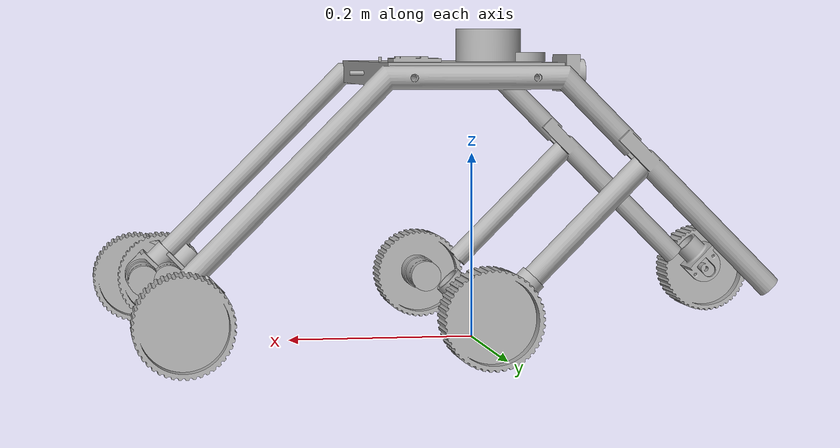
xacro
<?xml version="1.0" ?>
<robot name="agribot" xmlns:xacro="http://www.ros.org/wiki/xacro">

<xacro:include filename="$(find agribot_description)/urdf/materials.xacro" />
<xacro:include filename="$(find agribot_description)/urdf/agribot.ros2control" />
<xacro:include filename="$(find agribot_description)/urdf/agribot.gazebo" />
<link name="base_footprint" />
<link name="base_link">
  <inertial>
    <origin xyz="0.02376726050196793 -8.769362260032664e-06 -0.004748707157977561" rpy="0 0 0"/>
    <mass value="2.649489026530686"/>
    <inertia ixx="0.044199" iyy="0.025957" izz="0.057874" ixy="-0.0" iyz="-0.0" ixz="-0.001278"/>
  </inertial>
  <visual>
    <origin xyz="0 0 0" rpy="0 0 0"/>
    <geometry>
      <mesh filename="file://$(find agribot_description)/meshes/base_link.stl" scale="0.001 0.001 0.001"/>
    </geometry>
    <material name="silver"/>
  </visual>
  <collision>
    <origin xyz="0 0 0" rpy="0 0 0"/>
    <geometry>
      <mesh filename="file://$(find agribot_description)/meshes/base_link.stl" scale="0.001 0.001 0.001"/>
    </geometry>
  </collision>
</link>

<link name="motor_mount_1">
  <inertial>
    <origin xyz="0.002209810412204416 0.004569033461311572 -0.002209200882099166" rpy="0 0 0"/>
    <mass value="0.01743940222270842"/>
    <inertia ixx="6e-06" iyy="5e-06" izz="6e-06" ixy="-1e-06" iyz="1e-06" ixz="0.0"/>
  </inertial>
  <visual>
    <origin xyz="-0.333867 -0.17999 0.205668" rpy="0 0 0"/>
    <geometry>
      <mesh filename="file://$(find agribot_description)/meshes/motor_mount_1.stl" scale="0.001 0.001 0.001"/>
    </geometry>
    <material name="silver"/>
  </visual>
  <collision>
    <origin xyz="-0.333867 -0.17999 0.205668" rpy="0 0 0"/>
    <geometry>
      <mesh filename="file://$(find agribot_description)/meshes/motor_mount_1.stl" scale="0.001 0.001 0.001"/>
    </geometry>
  </collision>
</link>

<link name="motor_mount_2">
  <inertial>
    <origin xyz="0.002209182927432716 0.004569033461301525 -0.002209200882099166" rpy="0 0 0"/>
    <mass value="0.01743940222270842"/>
    <inertia ixx="6e-06" iyy="5e-06" izz="6e-06" ixy="-1e-06" iyz="1e-06" ixz="0.0"/>
  </inertial>
  <visual>
    <origin xyz="0.015838 -0.17999 0.205668" rpy="0 0 0"/>
    <geometry>
      <mesh filename="file://$(find agribot_description)/meshes/motor_mount_2.stl" scale="0.001 0.001 0.001"/>
    </geometry>
    <material name="silver"/>
  </visual>
  <collision>
    <origin xyz="0.015838 -0.17999 0.205668" rpy="0 0 0"/>
    <geometry>
      <mesh filename="file://$(find agribot_description)/meshes/motor_mount_2.stl" scale="0.001 0.001 0.001"/>
    </geometry>
  </collision>
</link>

<link name="motor_mount_3">
  <inertial>
    <origin xyz="-0.002209591366516328 0.004569033461293975 -0.0022092008966213272" rpy="0 0 0"/>
    <mass value="0.01743940222270842"/>
    <inertia ixx="6e-06" iyy="5e-06" izz="6e-06" ixy="1e-06" iyz="1e-06" ixz="-0.0"/>
  </inertial>
  <visual>
    <origin xyz="0.277468 -0.17999 0.205668" rpy="0 0 0"/>
    <geometry>
      <mesh filename="file://$(find agribot_description)/meshes/motor_mount_3.stl" scale="0.001 0.001 0.001"/>
    </geometry>
    <material name="silver"/>
  </visual>
  <collision>
    <origin xyz="0.277468 -0.17999 0.205668" rpy="0 0 0"/>
    <geometry>
      <mesh filename="file://$(find agribot_description)/meshes/motor_mount_3.stl" scale="0.001 0.001 0.001"/>
    </geometry>
  </collision>
</link>

<link name="motor_mount_4">
  <inertial>
    <origin xyz="0.0022098103976929684 -0.004568140525509218 -0.002209200896621133" rpy="0 0 0"/>
    <mass value="0.01743940222270842"/>
    <inertia ixx="6e-06" iyy="5e-06" izz="6e-06" ixy="1e-06" iyz="-1e-06" ixz="0.0"/>
  </inertial>
  <visual>
    <origin xyz="-0.333867 0.18001 0.205668" rpy="0 0 0"/>
    <geometry>
      <mesh filename="file://$(find agribot_description)/meshes/motor_mount_4.stl" scale="0.001 0.001 0.001"/>
    </geometry>
    <material name="silver"/>
  </visual>
  <collision>
    <origin xyz="-0.333867 0.18001 0.205668" rpy="0 0 0"/>
    <geometry>
      <mesh filename="file://$(find agribot_description)/meshes/motor_mount_4.stl" scale="0.001 0.001 0.001"/>
    </geometry>
  </collision>
</link>

<link name="motor_mount_5">
  <inertial>
    <origin xyz="0.0022091829129214403 -0.004568140525519515 -0.002209200896621133" rpy="0 0 0"/>
    <mass value="0.01743940222270842"/>
    <inertia ixx="6e-06" iyy="5e-06" izz="6e-06" ixy="1e-06" iyz="-1e-06" ixz="0.0"/>
  </inertial>
  <visual>
    <origin xyz="0.015838 0.18001 0.205668" rpy="0 0 0"/>
    <geometry>
      <mesh filename="file://$(find agribot_description)/meshes/motor_mount_5.stl" scale="0.001 0.001 0.001"/>
    </geometry>
    <material name="silver"/>
  </visual>
  <collision>
    <origin xyz="0.015838 0.18001 0.205668" rpy="0 0 0"/>
    <geometry>
      <mesh filename="file://$(find agribot_description)/meshes/motor_mount_5.stl" scale="0.001 0.001 0.001"/>
    </geometry>
  </collision>
</link>

<link name="motor_mount_6">
  <inertial>
    <origin xyz="-0.0022095913810276646 -0.0045681405255274254 -0.0022092008820992493" rpy="0 0 0"/>
    <mass value="0.01743940222270842"/>
    <inertia ixx="6e-06" iyy="5e-06" izz="6e-06" ixy="-1e-06" iyz="-1e-06" ixz="-0.0"/>
  </inertial>
  <visual>
    <origin xyz="0.277468 0.18001 0.205668" rpy="0 0 0"/>
    <geometry>
      <mesh filename="file://$(find agribot_description)/meshes/motor_mount_6.stl" scale="0.001 0.001 0.001"/>
    </geometry>
    <material name="silver"/>
  </visual>
  <collision>
    <origin xyz="0.277468 0.18001 0.205668" rpy="0 0 0"/>
    <geometry>
      <mesh filename="file://$(find agribot_description)/meshes/motor_mount_6.stl" scale="0.001 0.001 0.001"/>
    </geometry>
  </collision>
</link>

<link name="motor_1">
  <inertial>
    <origin xyz="0.011036658683897693 -0.03290017289606087 0.010882072426481482" rpy="0 0 0"/>
    <mass value="0.4814783214697331"/>
    <inertia ixx="0.000239" iyy="7.4e-05" izz="0.000239" ixy="-1e-06" iyz="1e-06" ixz="0.0"/>
  </inertial>
  <visual>
    <origin xyz="-0.338512 -0.199225 0.232233" rpy="0 0 0"/>
    <geometry>
      <mesh filename="file://$(find agribot_description)/meshes/motor_1.stl" scale="0.001 0.001 0.001"/>
    </geometry>
    <material name="silver"/>
  </visual>
  <collision>
    <origin xyz="-0.338512 -0.199225 0.232233" rpy="0 0 0"/>
    <geometry>
      <mesh filename="file://$(find agribot_description)/meshes/motor_1.stl" scale="0.001 0.001 0.001"/>
    </geometry>
  </collision>
</link>

<link name="motor_2">
  <inertial>
    <origin xyz="0.011036031199125086 -0.032900172896071556 0.010882072426481482" rpy="0 0 0"/>
    <mass value="0.4814783214697331"/>
    <inertia ixx="0.000239" iyy="7.4e-05" izz="0.000239" ixy="-1e-06" iyz="1e-06" ixz="0.0"/>
  </inertial>
  <visual>
    <origin xyz="0.011193 -0.199225 0.232233" rpy="0 0 0"/>
    <geometry>
      <mesh filename="file://$(find agribot_description)/meshes/motor_2.stl" scale="0.001 0.001 0.001"/>
    </geometry>
    <material name="silver"/>
  </visual>
  <collision>
    <origin xyz="0.011193 -0.199225 0.232233" rpy="0 0 0"/>
    <geometry>
      <mesh filename="file://$(find agribot_description)/meshes/motor_2.stl" scale="0.001 0.001 0.001"/>
    </geometry>
  </collision>
</link>

<link name="motor_3">
  <inertial>
    <origin xyz="0.010881681942064958 -0.032900172896079855 -0.011036049168313078" rpy="0 0 0"/>
    <mass value="0.4814783214697331"/>
    <inertia ixx="0.000239" iyy="7.4e-05" izz="0.000239" ixy="1e-06" iyz="1e-06" ixz="-0.0"/>
  </inertial>
  <visual>
    <origin xyz="0.304033 -0.199225 0.210313" rpy="0 0 0"/>
    <geometry>
      <mesh filename="file://$(find agribot_description)/meshes/motor_3.stl" scale="0.001 0.001 0.001"/>
    </geometry>
    <material name="silver"/>
  </visual>
  <collision>
    <origin xyz="0.304033 -0.199225 0.210313" rpy="0 0 0"/>
    <geometry>
      <mesh filename="file://$(find agribot_description)/meshes/motor_3.stl" scale="0.001 0.001 0.001"/>
    </geometry>
  </collision>
</link>

<link name="motor_4">
  <inertial>
    <origin xyz="-0.011036439652719165 0.032900065831845654 0.010882072426481482" rpy="0 0 0"/>
    <mass value="0.4814783214697331"/>
    <inertia ixx="0.000239" iyy="7.4e-05" izz="0.000239" ixy="-1e-06" iyz="-1e-06" ixz="-0.0"/>
  </inertial>
  <visual>
    <origin xyz="0.282113 0.199244 0.232233" rpy="0 0 0"/>
    <geometry>
      <mesh filename="file://$(find agribot_description)/meshes/motor_4.stl" scale="0.001 0.001 0.001"/>
    </geometry>
    <material name="silver"/>
  </visual>
  <collision>
    <origin xyz="0.282113 0.199244 0.232233" rpy="0 0 0"/>
    <geometry>
      <mesh filename="file://$(find agribot_description)/meshes/motor_4.stl" scale="0.001 0.001 0.001"/>
    </geometry>
  </collision>
</link>

<link name="motor_5">
  <inertial>
    <origin xyz="-0.010882090395659785 0.03290006583185412 -0.011036049168312329" rpy="0 0 0"/>
    <mass value="0.4814783214697331"/>
    <inertia ixx="0.000239" iyy="7.4e-05" izz="0.000239" ixy="1e-06" iyz="-1e-06" ixz="0.0"/>
  </inertial>
  <visual>
    <origin xyz="-0.010727 0.199244 0.210313" rpy="0 0 0"/>
    <geometry>
      <mesh filename="file://$(find agribot_description)/meshes/motor_5.stl" scale="0.001 0.001 0.001"/>
    </geometry>
    <material name="silver"/>
  </visual>
  <collision>
    <origin xyz="-0.010727 0.199244 0.210313" rpy="0 0 0"/>
    <geometry>
      <mesh filename="file://$(find agribot_description)/meshes/motor_5.stl" scale="0.001 0.001 0.001"/>
    </geometry>
  </collision>
</link>

<link name="motor_6">
  <inertial>
    <origin xyz="-0.010881462910887985 0.032900065831863695 -0.011036049168313605" rpy="0 0 0"/>
    <mass value="0.4814783214697331"/>
    <inertia ixx="0.000239" iyy="7.4e-05" izz="0.000239" ixy="1e-06" iyz="-1e-06" ixz="0.0"/>
  </inertial>
  <visual>
    <origin xyz="-0.360432 0.199244 0.210313" rpy="0 0 0"/>
    <geometry>
      <mesh filename="file://$(find agribot_description)/meshes/motor_6.stl" scale="0.001 0.001 0.001"/>
    </geometry>
    <material name="silver"/>
  </visual>
  <collision>
    <origin xyz="-0.360432 0.199244 0.210313" rpy="0 0 0"/>
    <geometry>
      <mesh filename="file://$(find agribot_description)/meshes/motor_6.stl" scale="0.001 0.001 0.001"/>
    </geometry>
  </collision>
</link>

<link name="right_rear_link_1">
  <inertial>
    <origin xyz="-2.895443201866854e-08 -0.012371746001831024 -2.6967430338808995e-07" rpy="0 0 0"/>
    <mass value="0.22366924861365764"/>
    <inertia ixx="0.000183" iyy="0.000329" izz="0.000183" ixy="0.0" iyz="-0.0" ixz="0.0"/>
  </inertial>
  <visual>
    <origin xyz="0.297257 0.219744 0.226988" rpy="0 0 0"/>
    <geometry>
      <mesh filename="file://$(find agribot_description)/meshes/right_rear_link_1.stl" scale="0.001 0.001 0.001"/>
    </geometry>
    <material name="silver"/>
  </visual>
  <collision>
    <origin xyz="0.297257 0.219744 0.226988" rpy="0 0 0"/>
    <geometry>
      <mesh filename="file://$(find agribot_description)/meshes/right_rear_link_1.stl" scale="0.001 0.001 0.001"/>
    </geometry>
  </collision>
</link>

<link name="right_mid_link_1">
  <inertial>
    <origin xyz="4.3610298984444323e-07 -0.01237174600182217 -4.540721615930998e-07" rpy="0 0 0"/>
    <mass value="0.22366924861365764"/>
    <inertia ixx="0.000183" iyy="0.000329" izz="0.000183" ixy="0.0" iyz="-0.0" ixz="0.0"/>
  </inertial>
  <visual>
    <origin xyz="-0.004716 0.219744 0.226222" rpy="0 0 0"/>
    <geometry>
      <mesh filename="file://$(find agribot_description)/meshes/right_mid_link_1.stl" scale="0.001 0.001 0.001"/>
    </geometry>
    <material name="silver"/>
  </visual>
  <collision>
    <origin xyz="-0.004716 0.219744 0.226222" rpy="0 0 0"/>
    <geometry>
      <mesh filename="file://$(find agribot_description)/meshes/right_mid_link_1.stl" scale="0.001 0.001 0.001"/>
    </geometry>
  </collision>
</link>

<link name="right_front_link_1">
  <inertial>
    <origin xyz="6.358776188930548e-08 -0.012371746001812955 -4.540721606216547e-07" rpy="0 0 0"/>
    <mass value="0.22366924861365764"/>
    <inertia ixx="0.000183" iyy="0.000329" izz="0.000183" ixy="0.0" iyz="-0.0" ixz="0.0"/>
  </inertial>
  <visual>
    <origin xyz="-0.354422 0.219744 0.226222" rpy="0 0 0"/>
    <geometry>
      <mesh filename="file://$(find agribot_description)/meshes/right_front_link_1.stl" scale="0.001 0.001 0.001"/>
    </geometry>
    <material name="silver"/>
  </visual>
  <collision>
    <origin xyz="-0.354422 0.219744 0.226222" rpy="0 0 0"/>
    <geometry>
      <mesh filename="file://$(find agribot_description)/meshes/right_front_link_1.stl" scale="0.001 0.001 0.001"/>
    </geometry>
  </collision>
</link>

<link name="left_front_link_1">
  <inertial>
    <origin xyz="6.358774801151768e-08 0.012371638937615781 -4.5407217499904284e-07" rpy="0 0 0"/>
    <mass value="0.22366924861365764"/>
    <inertia ixx="0.000183" iyy="0.000329" izz="0.000183" ixy="-0.0" iyz="-0.0" ixz="-0.0"/>
  </inertial>
  <visual>
    <origin xyz="-0.354422 -0.219725 0.226222" rpy="0 0 0"/>
    <geometry>
      <mesh filename="file://$(find agribot_description)/meshes/left_front_link_1.stl" scale="0.001 0.001 0.001"/>
    </geometry>
    <material name="silver"/>
  </visual>
  <collision>
    <origin xyz="-0.354422 -0.219725 0.226222" rpy="0 0 0"/>
    <geometry>
      <mesh filename="file://$(find agribot_description)/meshes/left_front_link_1.stl" scale="0.001 0.001 0.001"/>
    </geometry>
  </collision>
</link>

<link name="left_mid_link_1">
  <inertial>
    <origin xyz="4.3610298313366547e-07 0.007371638937605202 -4.5407217955095724e-07" rpy="0 0 0"/>
    <mass value="0.22366924861365764"/>
    <inertia ixx="0.000183" iyy="0.000329" izz="0.000183" ixy="-0.0" iyz="-0.0" ixz="-0.0"/>
  </inertial>
  <visual>
    <origin xyz="-0.004716 -0.219725 0.226222" rpy="0 0 0"/>
    <geometry>
      <mesh filename="file://$(find agribot_description)/meshes/left_mid_link_1.stl" scale="0.001 0.001 0.001"/>
    </geometry>
    <material name="silver"/>
  </visual>
  <collision>
    <origin xyz="-0.004716 -0.219725 0.226222" rpy="0 0 0"/>
    <geometry>
      <mesh filename="file://$(find agribot_description)/meshes/left_mid_link_1.stl" scale="0.001 0.001 0.001"/>
    </geometry>
  </collision>
</link>

<link name="left_rear_link_1">
  <inertial>
    <origin xyz="1.5544341214202007e-07 0.01237163893759688 -4.5407217599824357e-07" rpy="0 0 0"/>
    <mass value="0.22366924861365764"/>
    <inertia ixx="0.000183" iyy="0.000329" izz="0.000183" ixy="-0.0" iyz="-0.0" ixz="-0.0"/>
  </inertial>
  <visual>
    <origin xyz="0.298023 -0.219725 0.226222" rpy="0 0 0"/>
    <geometry>
      <mesh filename="file://$(find agribot_description)/meshes/left_rear_link_1.stl" scale="0.001 0.001 0.001"/>
    </geometry>
    <material name="silver"/>
  </visual>
  <collision>
    <origin xyz="0.298023 -0.219725 0.226222" rpy="0 0 0"/>
    <geometry>
      <mesh filename="file://$(find agribot_description)/meshes/left_rear_link_1.stl" scale="0.001 0.001 0.001"/>
    </geometry>
  </collision>
</link>

<link name="imu_link_1">
  <inertial>
    <origin xyz="0.0001505183280713085 0.0009028305958420219 -0.0007671413731985752" rpy="0 0 0"/>
    <mass value="0.06787415121849628"/>
    <inertia ixx="9e-06" iyy="1.4e-05" izz="2.2e-05" ixy="-0.0" iyz="0.0" ixz="-0.0"/>
  </inertial>
  <visual>
    <origin xyz="-0.0782 -0.09499 -0.028" rpy="0 0 0"/>
    <geometry>
      <mesh filename="file://$(find agribot_description)/meshes/imu_link_1.stl" scale="0.001 0.001 0.001"/>
    </geometry>
    <material name="silver"/>
  </visual>
  <collision>
    <origin xyz="-0.0782 -0.09499 -0.028" rpy="0 0 0"/>
    <geometry>
      <mesh filename="file://$(find agribot_description)/meshes/imu_link_1.stl" scale="0.001 0.001 0.001"/>
    </geometry>
  </collision>
</link>

<link name="lidar_link_1">
  <inertial>
    <origin xyz="-0.05105723521362256 4.464678925921589e-07 0.011388122125470204" rpy="0 0 0"/>
    <mass value="0.24203789804385267"/>
    <inertia ixx="9.8e-05" iyy="0.000133" izz="0.00018" ixy="-0.0" iyz="0.0" ixz="1.1e-05"/>
  </inertial>
  <visual>
    <origin xyz="-0.0982 0.01501 -0.03" rpy="0 0 0"/>
    <geometry>
      <mesh filename="file://$(find agribot_description)/meshes/lidar_link_1.stl" scale="0.001 0.001 0.001"/>
    </geometry>
    <material name="silver"/>
  </visual>
  <collision>
    <origin xyz="-0.0982 0.01501 -0.03" rpy="0 0 0"/>
    <geometry>
      <mesh filename="file://$(find agribot_description)/meshes/lidar_link_1.stl" scale="0.001 0.001 0.001"/>
    </geometry>
  </collision>
</link>

<link name="camera_link_1">
  <inertial>
    <origin xyz="0.0013710521364758976 0.0004246940467724747 -2.568385903262138e-10" rpy="0 0 0"/>
    <mass value="0.3825680956213953"/>
    <inertia ixx="0.000186" iyy="6.2e-05" izz="0.000153" ixy="-2e-06" iyz="-0.0" ixz="-0.0"/>
  </inertial>
  <visual>
    <origin xyz="-0.1332 1e-05 -0.0125" rpy="0 0 0"/>
    <geometry>
      <mesh filename="file://$(find agribot_description)/meshes/camera_link_1.stl" scale="0.001 0.001 0.001"/>
    </geometry>
    <material name="silver"/>
  </visual>
  <collision>
    <origin xyz="-0.1332 1e-05 -0.0125" rpy="0 0 0"/>
    <geometry>
      <mesh filename="file://$(find agribot_description)/meshes/camera_link_1.stl" scale="0.001 0.001 0.001"/>
    </geometry>
  </collision>
</link>

<joint name="world_joint" type="fixed">
  <parent link="base_footprint"/>
  <child link="base_link"/>
  <origin xyz="0.0 0.0 0.27431" rpy="0.0 0.0 0.0"/>

</joint>

<joint name="left_front_mount_joint" type="fixed">
  <origin xyz="0.333867 0.17999 -0.205668" rpy="0 0 0"/>
  <parent link="base_link"/>
  <child link="motor_mount_1"/>
</joint>

<joint name="left_mid_mount_joint" type="fixed">
  <origin xyz="-0.015838 0.17999 -0.205668" rpy="0 0 0"/>
  <parent link="base_link"/>
  <child link="motor_mount_2"/>
</joint>

<joint name="left_rear_mount_joint" type="fixed">
  <origin xyz="-0.277468 0.17999 -0.205668" rpy="0 0 0"/>
  <parent link="base_link"/>
  <child link="motor_mount_3"/>
</joint>

<joint name="right_front_mount_joint" type="fixed">
  <origin xyz="0.333867 -0.18001 -0.205668" rpy="0 0 0"/>
  <parent link="base_link"/>
  <child link="motor_mount_4"/>
</joint>

<joint name="right_mid_mount_joint" type="fixed">
  <origin xyz="-0.015838 -0.18001 -0.205668" rpy="0 0 0"/>
  <parent link="base_link"/>
  <child link="motor_mount_5"/>
</joint>

<joint name="right_rear_mount_joint" type="fixed">
  <origin xyz="-0.277468 -0.18001 -0.205668" rpy="0 0 0"/>
  <parent link="base_link"/>
  <child link="motor_mount_6"/>
</joint>

<joint name="left_front_motor_joint" type="fixed">
  <origin xyz="0.004645 0.019235 -0.026565" rpy="0 0 0"/>
  <parent link="motor_mount_1"/>
  <child link="motor_1"/>
</joint>

<joint name="left_mid_motor_joint" type="fixed">
  <origin xyz="0.004645 0.019235 -0.026565" rpy="0 0 0"/>
  <parent link="motor_mount_2"/>
  <child link="motor_2"/>
</joint>

<joint name="left_rear_motor_joint" type="fixed">
  <origin xyz="-0.026565 0.019235 -0.004645" rpy="0 0 0"/>
  <parent link="motor_mount_3"/>
  <child link="motor_3"/>
</joint>

<joint name="right_rear_motor_joint" type="fixed">
  <origin xyz="-0.004645 -0.019234 -0.026565" rpy="0 0 0"/>
  <parent link="motor_mount_6"/>
  <child link="motor_4"/>
</joint>

<joint name="right_mid_motor_joint" type="fixed">
  <origin xyz="0.026565 -0.019234 -0.004645" rpy="0 0 0"/>
  <parent link="motor_mount_5"/>
  <child link="motor_5"/>
</joint>

<joint name="right_front_motor_joint" type="fixed">
  <origin xyz="0.026565 -0.019234 -0.004645" rpy="0 0 0"/>
  <parent link="motor_mount_4"/>
  <child link="motor_6"/>
</joint>

<joint name="right_rear_wheel_joint" type="continuous">
  <origin xyz="-0.015144 -0.0205 0.005245" rpy="0 0 0"/>
  <parent link="motor_4"/>
  <child link="right_rear_link_1"/>
  <axis xyz="-0.0 1.0 0.0"/>
</joint>

<joint name="right_mid_wheel_joint" type="continuous">
  <origin xyz="-0.006011 -0.0205 -0.015909" rpy="0 0 0"/>
  <parent link="motor_5"/>
  <child link="right_mid_link_1"/>
  <axis xyz="0.0 1.0 -0.0"/>
</joint>

<joint name="right_front_wheel_joint" type="continuous">
  <origin xyz="-0.00601 -0.0205 -0.015909" rpy="0 0 0"/>
  <parent link="motor_6"/>
  <child link="right_front_link_1"/>
  <axis xyz="0.0 1.0 -0.0"/>
</joint>

<joint name="left_front_wheel_joint" type="continuous">
  <origin xyz="0.01591 0.0205 0.006011" rpy="0 0 0"/>
  <parent link="motor_1"/>
  <child link="left_front_link_1"/>
  <axis xyz="-0.0 1.0 0.0"/>
</joint>

<joint name="left_mid_wheel_joint" type="continuous">
  <origin xyz="0.015909 0.0205 0.006011" rpy="0 0 0"/>
  <parent link="motor_2"/>
  <child link="left_mid_link_1"/>
  <axis xyz="-0.0 1.0 0.0"/>
</joint>

<joint name="left_rear_wheel_joint" type="continuous">
  <origin xyz="0.00601 0.0205 -0.015909" rpy="0 0 0"/>
  <parent link="motor_3"/>
  <child link="left_rear_link_1"/>
  <axis xyz="-0.0 1.0 -0.0"/>
</joint>

<joint name="imu_joint" type="fixed">
  <origin xyz="0.0782 0.09499 0.028" rpy="0 0 0"/>
  <parent link="base_link"/>
  <child link="imu_link_1"/>
</joint>

<joint name="lidar_joint" type="fixed">
  <origin xyz="0.0982 -0.01501 0.03" rpy="0 0 0"/>
  <parent link="base_link"/>
  <child link="lidar_link_1"/>
</joint>

<joint name="camera_joint" type="fixed">
  <origin xyz="0.1332 -1e-05 0.0125" rpy="0 0 0"/>
  <parent link="base_link"/>
  <child link="camera_link_1"/>
</joint>

</robot>

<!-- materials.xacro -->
<robot name="agribot" xmlns:xacro="http://www.ros.org/wiki/xacro" >

<material name="silver">
  <color rgba="0.700 0.700 0.700 1.000"/>
</material>

</robot>

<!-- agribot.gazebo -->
<robot name="agribot" xmlns:xacro="http://www.ros.org/wiki/xacro" >

<xacro:property name="body_color" value="Gazebo/Silver" />
<xacro:property name="wheel_color" value="Gazebo/Silver" />

<gazebo reference="base_link">
  <material>${body_color}</material>
  <mu1>0.2</mu1>
  <mu2>0.2</mu2>
  <self_collide>true</self_collide>
  <gravity>true</gravity>
</gazebo>

<gazebo reference="motor_mount_1">
  <material>${body_color}</material>
  <mu1>0.2</mu1>
  <mu2>0.2</mu2>
  <self_collide>true</self_collide>
</gazebo>

<gazebo reference="motor_mount_2">
  <material>${body_color}</material>
  <mu1>0.2</mu1>
  <mu2>0.2</mu2>
  <self_collide>true</self_collide>
</gazebo>

<gazebo reference="motor_mount_3">
  <material>${body_color}</material>
  <mu1>0.2</mu1>
  <mu2>0.2</mu2>
  <self_collide>true</self_collide>
</gazebo>

<gazebo reference="motor_mount_4">
  <material>${body_color}</material>
  <mu1>0.2</mu1>
  <mu2>0.2</mu2>
  <self_collide>true</self_collide>
</gazebo>

<gazebo reference="motor_mount_5">
  <material>${body_color}</material>
  <mu1>0.2</mu1>
  <mu2>0.2</mu2>
  <self_collide>true</self_collide>
</gazebo>

<gazebo reference="motor_mount_6">
  <material>${body_color}</material>
  <mu1>0.2</mu1>
  <mu2>0.2</mu2>
  <self_collide>true</self_collide>
</gazebo>

<gazebo reference="motor_1">
  <material>${body_color}</material>
  <mu1>0.2</mu1>
  <mu2>0.2</mu2>
  <self_collide>true</self_collide>
</gazebo>

<gazebo reference="motor_2">
  <material>${body_color}</material>
  <mu1>0.2</mu1>
  <mu2>0.2</mu2>
  <self_collide>true</self_collide>
</gazebo>

<gazebo reference="motor_3">
  <material>${body_color}</material>
  <mu1>0.2</mu1>
  <mu2>0.2</mu2>
  <self_collide>true</self_collide>
</gazebo>

<gazebo reference="motor_4">
  <material>${body_color}</material>
  <mu1>0.2</mu1>
  <mu2>0.2</mu2>
  <self_collide>true</self_collide>
</gazebo>

<gazebo reference="motor_5">
  <material>${body_color}</material>
  <mu1>0.2</mu1>
  <mu2>0.2</mu2>
  <self_collide>true</self_collide>
</gazebo>

<gazebo reference="motor_6">
  <material>${body_color}</material>
  <mu1>0.2</mu1>
  <mu2>0.2</mu2>
  <self_collide>true</self_collide>
</gazebo>

<gazebo reference="right_rear_link_1">
  <material>${wheel_color}</material>
  <mu1>1.0</mu1>
  <mu2>1.0</mu2>
</gazebo>

<gazebo reference="right_mid_link_1">
  <material>${wheel_color}</material>
  <mu1>1.0</mu1>
  <mu2>1.0</mu2>
</gazebo>

<gazebo reference="right_front_link_1">
  <material>${wheel_color}</material>
  <mu1>1.0</mu1>
  <mu2>1.0</mu2>
</gazebo>

<gazebo reference="left_front_link_1">
  <material>${wheel_color}</material>
  <mu1>1.0</mu1>
  <mu2>1.0</mu2>
</gazebo>

<gazebo reference="left_mid_link_1">
  <material>${wheel_color}</material>
  <mu1>1.0</mu1>
  <mu2>1.0</mu2>
</gazebo>

<gazebo reference="left_rear_link_1">
  <material>${wheel_color}</material>
  <mu1>1.0</mu1>
  <mu2>1.0</mu2>
</gazebo>

<gazebo reference="imu_link_1">
  <material>${wheel_color}</material>
  <mu1>0.2</mu1>
  <mu2>0.2</mu2>
  <self_collide>true</self_collide>
</gazebo>

<gazebo reference="lidar_link_1">
  <material>${wheel_color}</material>
  <mu1>0.2</mu1>
  <mu2>0.2</mu2>
  <self_collide>true</self_collide>
</gazebo>

<gazebo reference="camera_link_1">
  <material>${wheel_color}</material>
  <mu1>0.2</mu1>
  <mu2>0.2</mu2>
  <self_collide>true</self_collide>
</gazebo>
<gazebo>
        <plugin filename="gz_ros2_control-system" name="gz_ros2_control::GazeboSimROS2ControlPlugin">
            <parameters>$(find agribot_controller)/config/agribot_controller.yaml</parameters>
        </plugin>
  </gazebo>

</robot>
